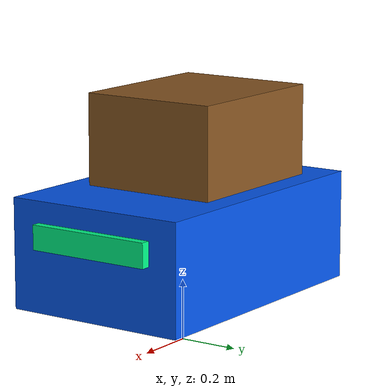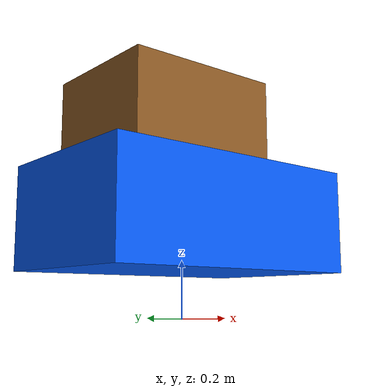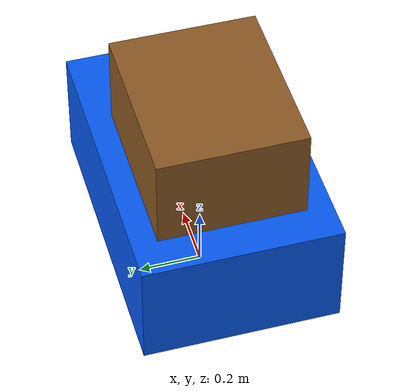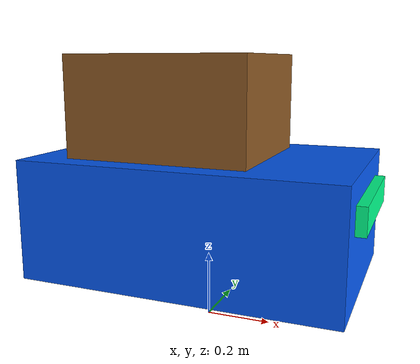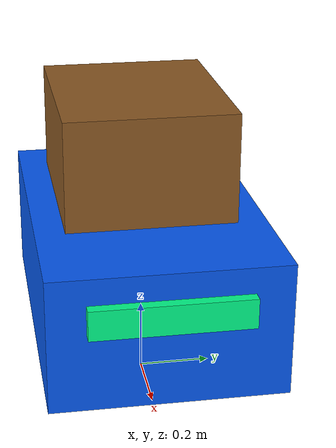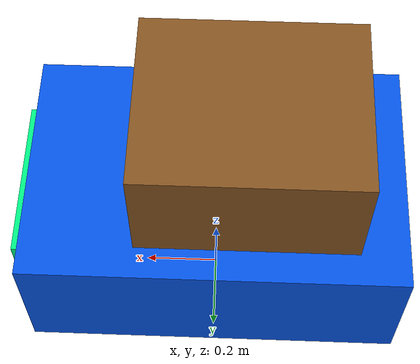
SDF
<?xml version="1.0"?>
<sdf version="1.6">
  <model name="demo_dynamic_agv">
    <pose>0 0 0.10 0 0 0</pose>
    <static>false</static>
    <allow_auto_disable>false</allow_auto_disable>
    <link name="link">
      <gravity>false</gravity>
      <kinematic>true</kinematic>
      <inertial>
        <mass>60</mass>
        <inertia>
          <ixx>7</ixx>
          <ixy>0</ixy>
          <ixz>0</ixz>
          <iyy>9</iyy>
          <iyz>0</iyz>
          <izz>11</izz>
        </inertia>
      </inertial>
      <collision name="collision">
        <pose>0 0 0.24 0 0 0</pose>
        <geometry>
          <box>
            <size>0.95 0.62 0.36</size>
          </box>
        </geometry>
      </collision>
      <visual name="base_visual">
        <pose>0 0 0.24 0 0 0</pose>
        <geometry>
          <box>
            <size>0.95 0.62 0.36</size>
          </box>
        </geometry>
        <material>
          <ambient>0.02 0.35 0.95 1</ambient>
          <diffuse>0.02 0.35 0.95 1</diffuse>
          <specular>0.15 0.20 0.45 1</specular>
        </material>
      </visual>
      <visual name="payload_visual">
        <pose>-0.08 0 0.55 0 0 0</pose>
        <geometry>
          <box>
            <size>0.55 0.46 0.34</size>
          </box>
        </geometry>
        <material>
          <ambient>0.55 0.35 0.14 1</ambient>
          <diffuse>0.55 0.35 0.14 1</diffuse>
        </material>
      </visual>
      <visual name="front_light_visual">
        <pose>0.49 0 0.31 0 0 0</pose>
        <geometry>
          <box>
            <size>0.03 0.42 0.08</size>
          </box>
        </geometry>
        <material>
          <ambient>0.0 1.0 0.55 1</ambient>
          <diffuse>0.0 1.0 0.55 1</diffuse>
          <emissive>0.0 0.8 0.45 1</emissive>
        </material>
      </visual>
    </link>
  </model>
</sdf>
